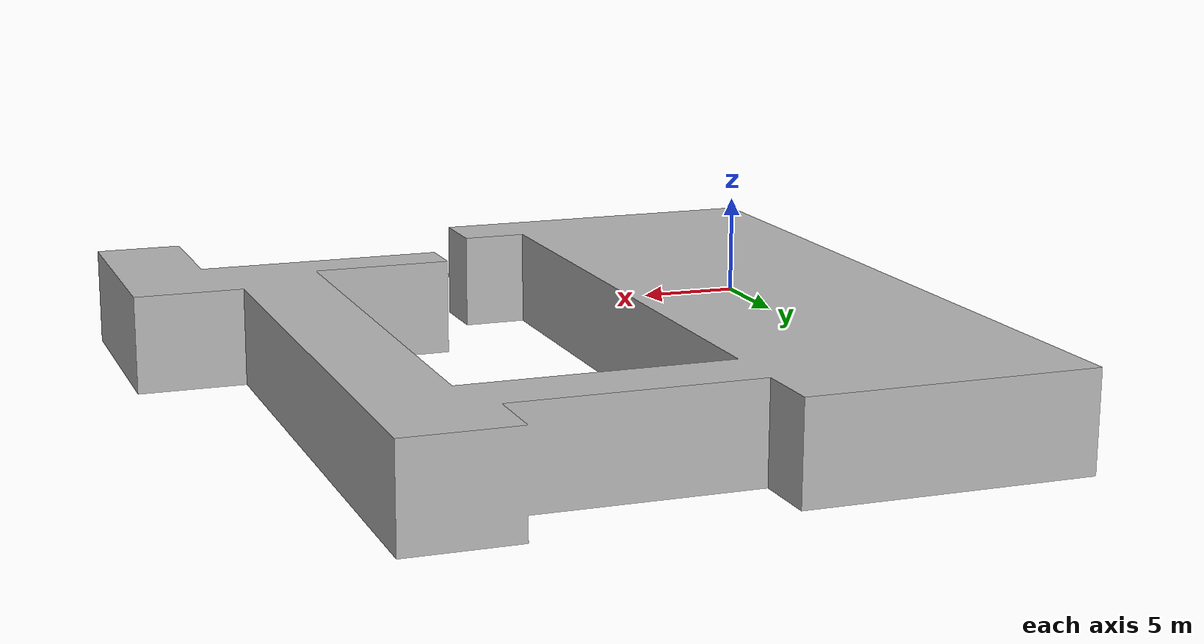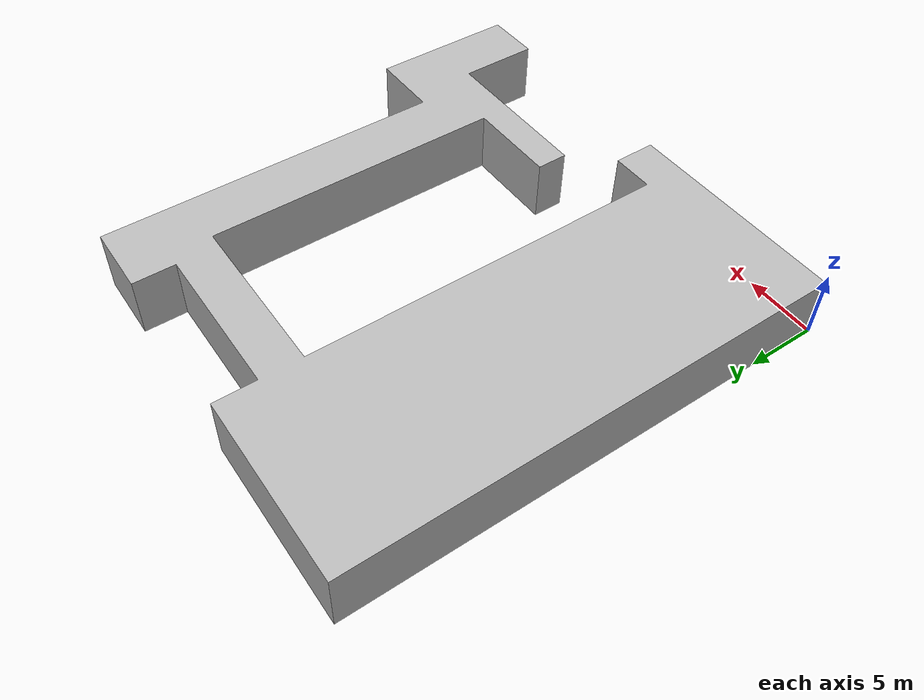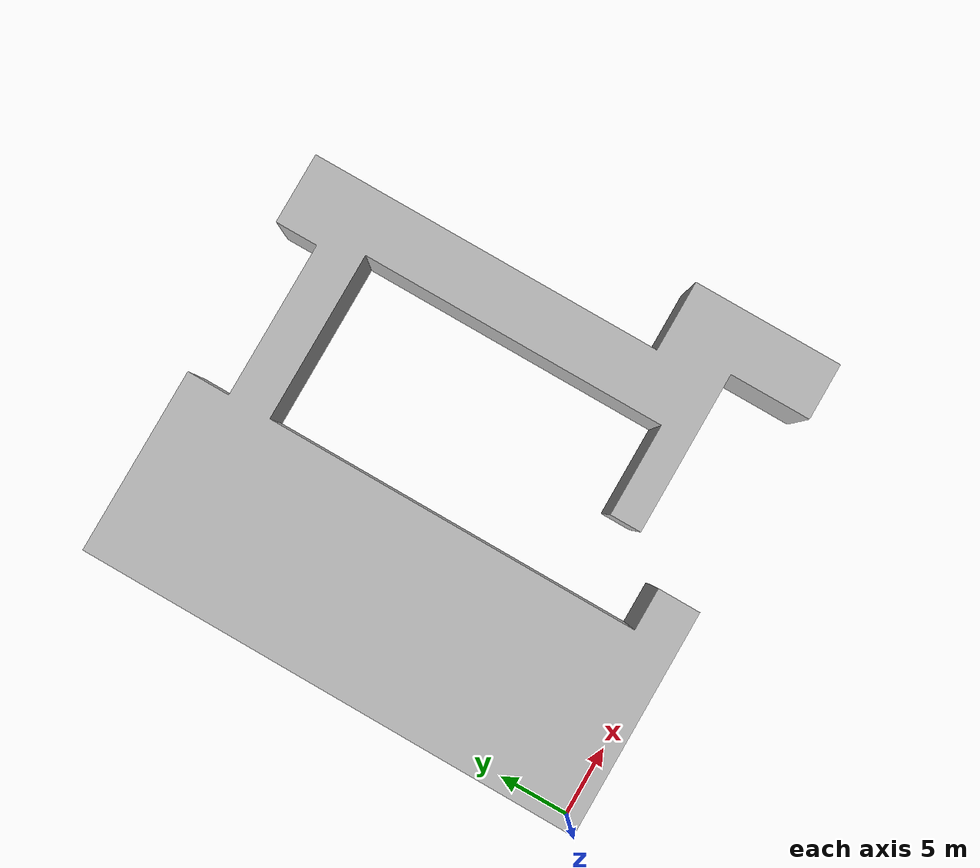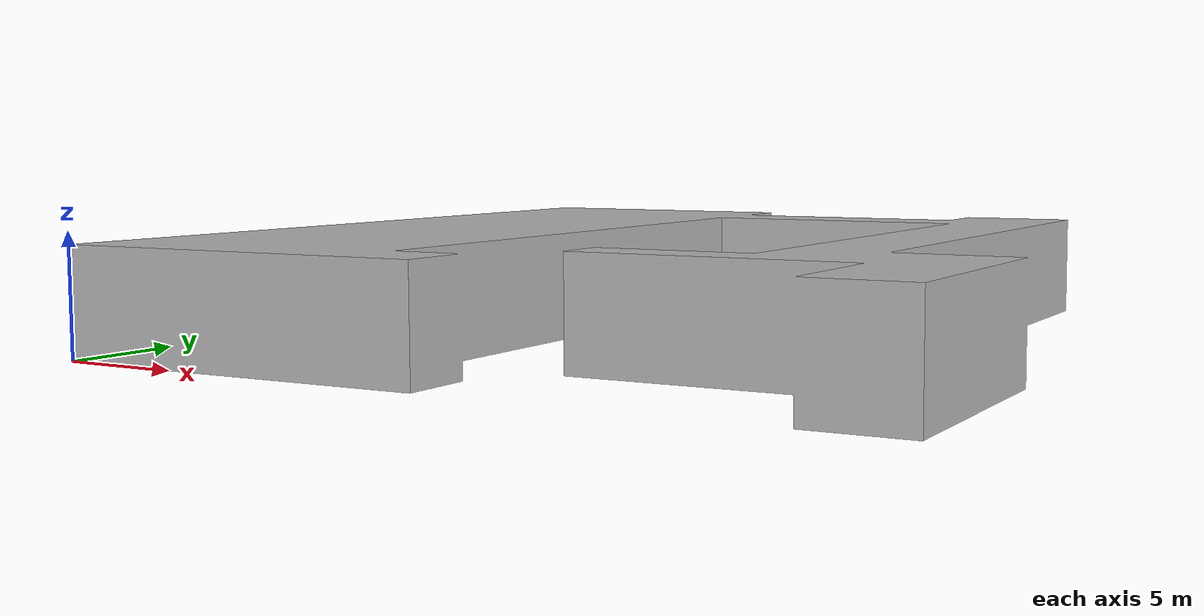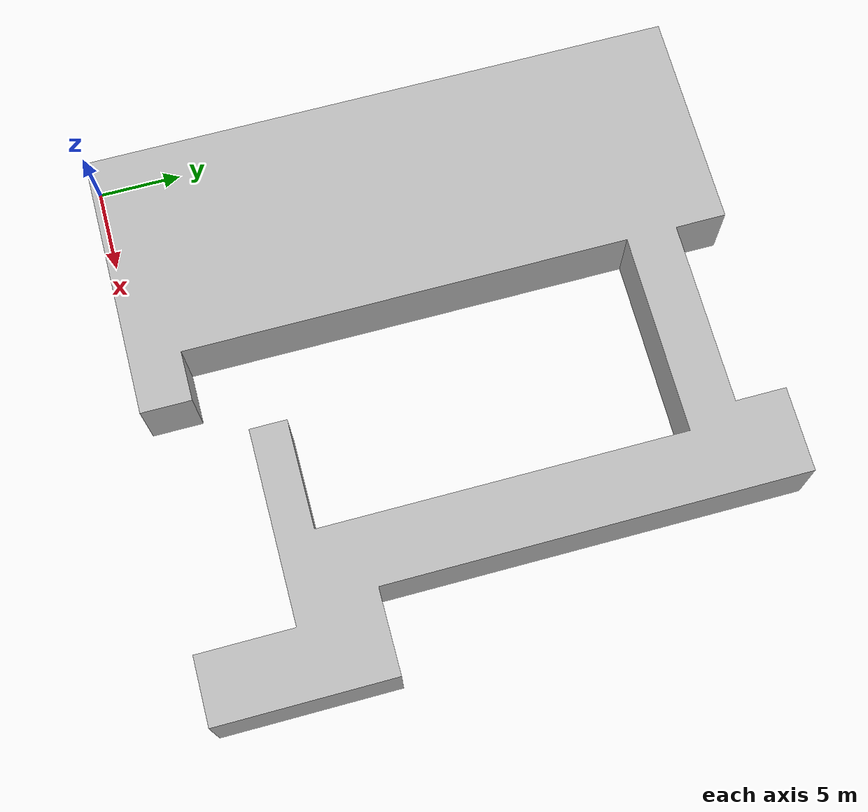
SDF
<?xml version='1.0'?>
<sdf version="1.6">

  <model name="floor5_5_8">
    <static>true</static>

    <link name="link">
      <pose>0 0 0 0 0 0</pose>
      <collision name="collision">
        <geometry>
          <mesh>
            <uri>model://floor5_5_8/meshes/floor5_5_8.dae</uri>
          </mesh>
        </geometry>
      </collision>

      <visual name="visual">
        <geometry>
          <mesh>
            <uri>model://floor5_5_8/meshes/floor5_5_8.dae</uri>
          </mesh>
        </geometry>
      </visual>
    </link>

  </model>
</sdf>
